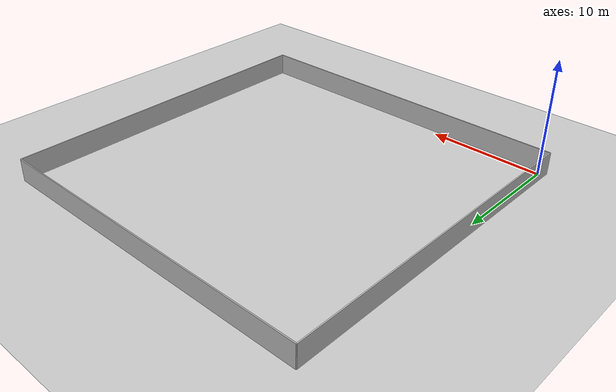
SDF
<?xml version="1.0" ?>

    <!-- this file is auto generated using pedsim_gazebo_plugin pkg -->
    <sdf version="1.5">
      <world name="default">

       <gui>
    	<camera name="user_camera">
      		<pose>-10 -2 8 0 0.4 0.4</pose>
    	</camera>
  	</gui>

      <!-- Ground Plane -->

      <include>
        <uri>model://ground_plane</uri>
      </include>

      <include>
        <uri>model://sun</uri>
      </include>

<!-- Bottom wall -->
<model name="wall_bottom">
  <static>true</static>
  <pose>14.5 -0.5 1 0 0 0</pose>
  <link name="link">
    <collision name="collision">
      <geometry>
        <box>
          <size>30 0.1 2</size>
        </box>
      </geometry>
    </collision>
    <visual name="visual">
      <geometry>
        <box>
          <size>30 0.1 2</size>
        </box>
      </geometry>
    </visual>
  </link>
</model>

<!-- Left wall -->
<model name="wall_left">
  <static>true</static>
  <pose>-0.5 14.5 1 0 0 0</pose>
  <link name="link">
    <collision name="collision">
      <geometry>
        <box>
          <size>0.1 30 2</size>
        </box>
      </geometry>
    </collision>
    <visual name="visual">
      <geometry>
        <box>
          <size>0.1 30 2</size>
        </box>
      </geometry>
    </visual>
  </link>
</model>

<!-- Top wall -->
<model name="wall_top">
  <static>true</static>
  <pose>14.5 29.5 1 0 0 0</pose>
  <link name="link">
    <collision name="collision">
      <geometry>
        <box>
          <size>30 0.1 2</size>
        </box>
      </geometry>
    </collision>
    <visual name="visual">
      <geometry>
        <box>
          <size>30 0.1 2</size>
        </box>
      </geometry>
    </visual>
  </link>
</model>

<!-- Right wall -->
<model name="wall_right">
  <static>true</static>
  <pose>29.5 14.5 1 0 0 0</pose>
  <link name="link">
    <collision name="collision">
      <geometry>
        <box>
          <size>0.1 30 2</size>
        </box>
      </geometry>
    </collision>
    <visual name="visual">
      <geometry>
        <box>
          <size>0.1 30 2</size>
        </box>
      </geometry>
    </visual>
  </link>
</model>

            <plugin name="ActorPosesPlugin" filename="libActorPosesPlugin.so">
        </plugin>

      </world>
    </sdf>
